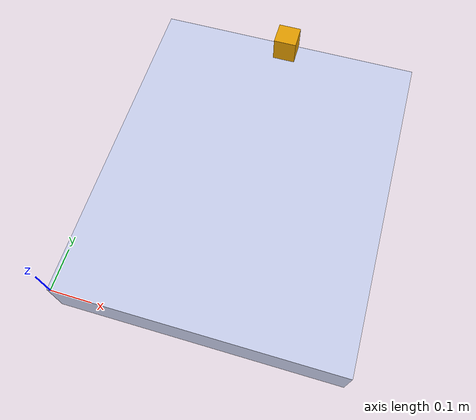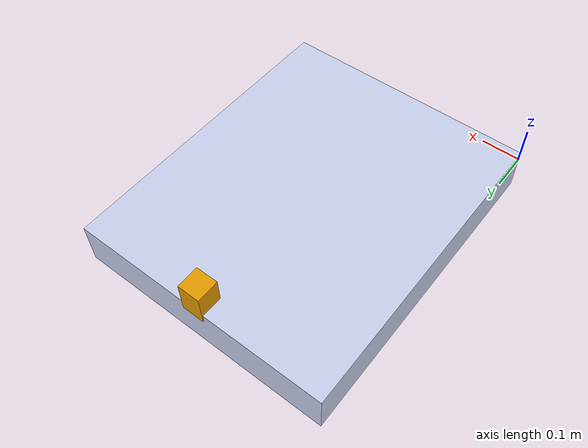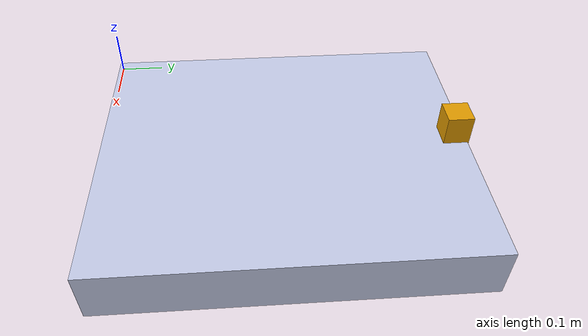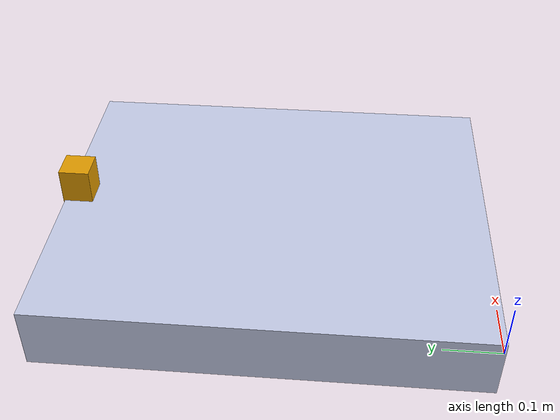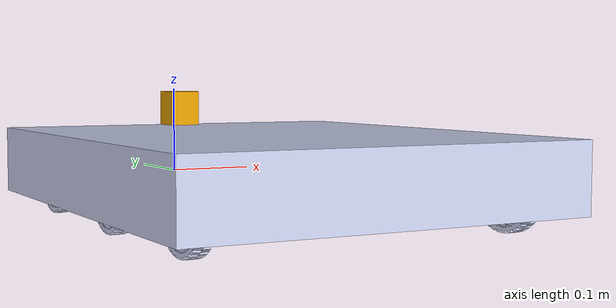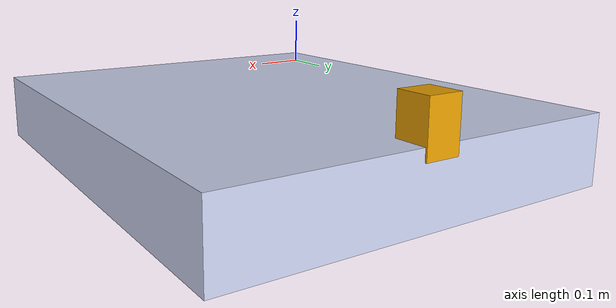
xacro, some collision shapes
<?xml version="1.0" ?>

<robot
        xmlns:xacro="http://www.ros.org/wiki/xacro"
        name="long_kop">

    <xacro:include filename="$(find kop_description)/urdf/kop.xacro"/>
    <xacro:include filename="$(find kop_description)/urdf/hokuyo.xacro"/>

    <link name="base_parent"/>

    <xacro:put_base_link parent="base_parent"/>

    <xacro:insert_wheel
            name="left_front"
            short="lf_wheel"
            origin="0.0657 0.701 -0.0563"/>

    <xacro:insert_wheel
            name="left_middle"
            short="lm_wheel"
            origin="0.0657 0.4064 -0.0599"/>

    <xacro:insert_wheel
            name="left_rear"
            short="lr_wheel"
            origin="0.0646 0.1113 -0.0563"/>

    <xacro:insert_wheel
            name="right_front"
            short="rf_wheel"
            origin="0.6211 0.7014 -0.0563"/>

    <xacro:insert_wheel
            name="right_middle"
            short="rm_wheel"
            origin="0.6200 0.4064 -0.0599"/>

    <xacro:insert_wheel
            name="right_rear"
            short="rr_wheel"
            origin="0.6200 0.1113 -0.0563"/>

    <xacro:create_trans name="lf_wheel"/>
    <xacro:create_trans name="lm_wheel"/>
    <xacro:create_trans name="lr_wheel"/>

    <xacro:create_trans name="rf_wheel"/>
    <xacro:create_trans name="rm_wheel"/>
    <xacro:create_trans name="rr_wheel"/>

    <xacro:hokuyo name="hokuyo"
                  parent="base_link"
                  ros_topic="/sensors/hokuyo_scan"
                  update_rate="40"
                  ray_count="1040"
                  min_angle="130"
                  max_angle="-130">
        <origin xyz="0.3429 0.7906 0.0550" rpy="0 0 ${pi / 2.0}"/>
    </xacro:hokuyo>

    <gazebo>
        <plugin filename="libgazebo_ros_control.so" name="gazebo_ros_control">
            <robotNamespace>/kop</robotNamespace>
        </plugin>
    </gazebo>
</robot>

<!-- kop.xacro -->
<robot xmlns:xacro="http://www.ros.org/wiki/xacro" name="helper">

    <!-- Constants -->
    <xacro:property name="package_name" value="kop_description"/>

    <xacro:property name="wheel_mass">
        <mass value="0.22"/>
    </xacro:property>

    <xacro:property name="wheel_color">
        <color rgba="0.792 0.819 0.933 1"/>
    </xacro:property>

    <xacro:property name="wheel_inertia">
        <inertia
                ixx="1e-1" ixy="0" ixz="0"
                iyy="1e-1" iyz="0"
                izz="1e-1"/>
    </xacro:property>

    <xacro:property name="zero_origin">
        <origin xyz="0 0 0" rpy="0 0 0"/>
    </xacro:property>

    <!-- Base Link Macro -->
    <xacro:macro name="put_base_link" params="parent">
        <link name="base_link">
            <inertial>
                <origin
                        xyz="0.3429 0.4064 -0.039182"
                        rpy="0 0 0"/>
                <mass value="20.00"/>
                <inertia
                        ixx="1.1458"
                        ixy="0"
                        ixz="0"
                        iyy="0.80739"
                        iyz="0"
                        izz="1.9061"/>
            </inertial>
            <visual>
                <xacro:insert_block name="zero_origin"/>
                <geometry>
                    <mesh
                            filename="package://${package_name}/meshes/visual/small_body.stl"/>
                </geometry>
                <material name="">
                    <color rgba="0.79216 0.81961 0.93333 1"/>
                </material>
            </visual>
            <collision>
                <origin
                        xyz="0.3429 0.4064 -0.039182"
                        rpy="0 0 0"/>
                <geometry>
                    <box size="0.6858 0.8206 0.1188"/>
                </geometry>
            </collision>
        </link>

        <joint name="base_parent_joint" type="fixed">
            <xacro:insert_block name="zero_origin"/>
            <parent link="${parent}"/>
            <child link="base_link"/>
        </joint>
    </xacro:macro>

    <!-- Wheel Generation Macro -->

    <xacro:macro name="insert_wheel" params="name short origin">
        <link name="${name}">
            <inertial>
                <xacro:insert_block name="zero_origin"/>
                <xacro:insert_block name="wheel_mass"/>
                <xacro:insert_block name="wheel_inertia"/>
            </inertial>
            <visual>
                <xacro:insert_block name="zero_origin"/>
                <geometry>
                    <mesh
                            filename="package://${package_name}/meshes/visual/small_wheel.stl"/>
                </geometry>
                <material name="">
                    <xacro:insert_block name="wheel_color"/>
                </material>
            </visual>
            <collision>
                <origin
                        xyz="0 0 0"
                        rpy="0 ${pi / 2.0} 0"/>
                <geometry>
                    <cylinder length="0.0350" radius="0.0762"/>
                </geometry>
            </collision>
        </link>

        <joint name="${short}" type="continuous">
            <origin
                    xyz="${origin}"
                    rpy="0 0 0"/>
            <parent link="base_link"/>
            <child link="${name}"/>
            <axis xyz="1 0 0"/>
            <limit effort="2.6" velocity="594"/>
            <dynamics
                    damping="1e-2"
                    friction="1e-1"/>
        </joint>
    </xacro:macro>

    <!-- Transmission Macro -->
    <xacro:macro name="joint_private" params="name">
        <joint name="${name}">
            <hardwareInterface>hardware_interface/EffortJointInterface</hardwareInterface>
        </joint>
    </xacro:macro>

    <xacro:macro name="create_trans" params="name">
        <transmission name="${name}_trans">
            <type>transmission_interface/SimpleTransmission</type>

            <xacro:joint_private name="${name}"/>

            <actuator name="${name}_actuator">
                <mechanicalReduction>5</mechanicalReduction>
            </actuator>
        </transmission>
    </xacro:macro>

</robot>

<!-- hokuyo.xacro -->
<robot xmlns:xacro="http://www.ros.org/wiki/xacro" name="hokuyo">
    <xacro:property name="M_PI" value="3.1415926535897931" />

    <xacro:macro name="hokuyo" params="name parent *origin ros_topic update_rate ray_count min_angle max_angle">
      <joint name="${name}_joint" type="fixed">
        <xacro:insert_block name="origin" />
        <parent link="${parent}"/>
        <child link="${name}_frame"/>
      </joint>

      <link name="${name}_frame">
        <inertial>
          <mass value="0.270" />
          <origin xyz="0 0 0" rpy="0 0 0" />
          <inertia ixx="2.632e-4" ixy="0" ixz="0" iyy="2.632e-4" iyz="0" izz="1.62e-4" />
        </inertial>
        <visual>
          <origin xyz="0 0 0" rpy="0 0 0" />
          <geometry>
              <mesh filename="package://kop_description/meshes/hokuyo_model.dae"/>
        </geometry>
        </visual>
        <collision>
          <origin xyz="0 0 -0.0115" rpy="0 0 0" />
          <geometry>
          <box size="0.058 0.058 0.087" />
        </geometry>
        </collision>
      </link>

      <gazebo reference="${name}_frame">
        <sensor type="ray" name="${name}">
          <always_on>true</always_on>
          <update_rate>${update_rate}</update_rate>
          <pose>0 0 0 0 0 0</pose>
          <visualize>false</visualize>
          <ray>
            <scan>
              <horizontal>
                <samples>${ray_count}</samples>
                <resolution>1</resolution>
                <min_angle>${min_angle * M_PI/180}</min_angle>
                <max_angle>${max_angle * M_PI/180}</max_angle>
              </horizontal>
            </scan>
            <range>
              <min>0.08</min>
              <max>30.0</max>
              <resolution>0.01</resolution>
            </range>
          </ray>
          <plugin name="gazebo_ros_${name}_controller" filename="libgazebo_ros_laser.so">
            <gaussianNoise>0.005</gaussianNoise>
            <alwaysOn>true</alwaysOn>
            <updateRate>${update_rate}</updateRate>
            <topicName>${ros_topic}</topicName>
            <frameName>${name}_frame</frameName>
          </plugin>
        </sensor>
      </gazebo>

    </xacro:macro>
  </robot>
